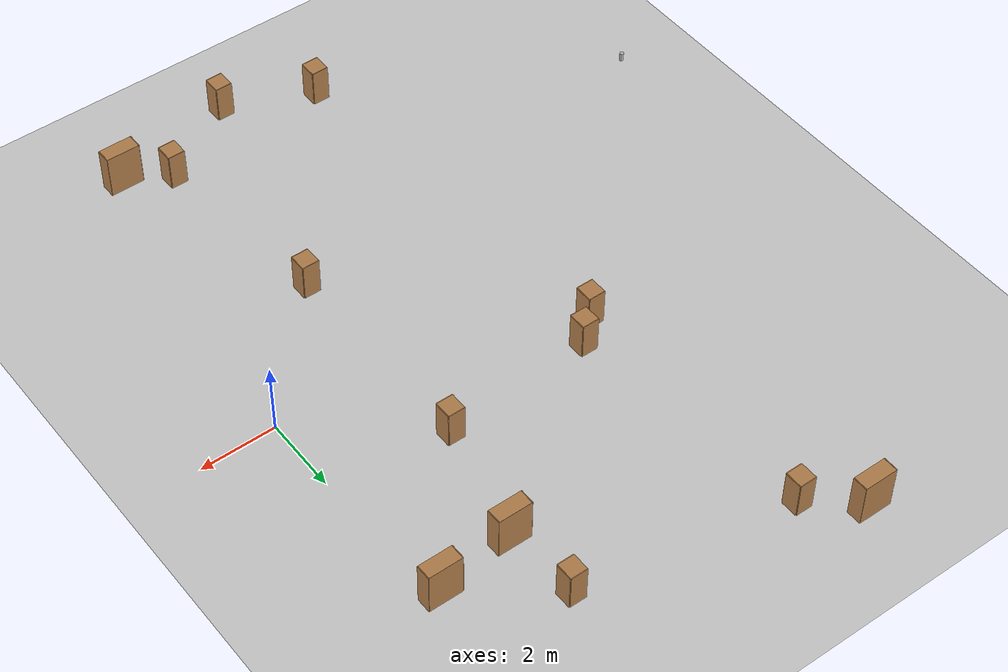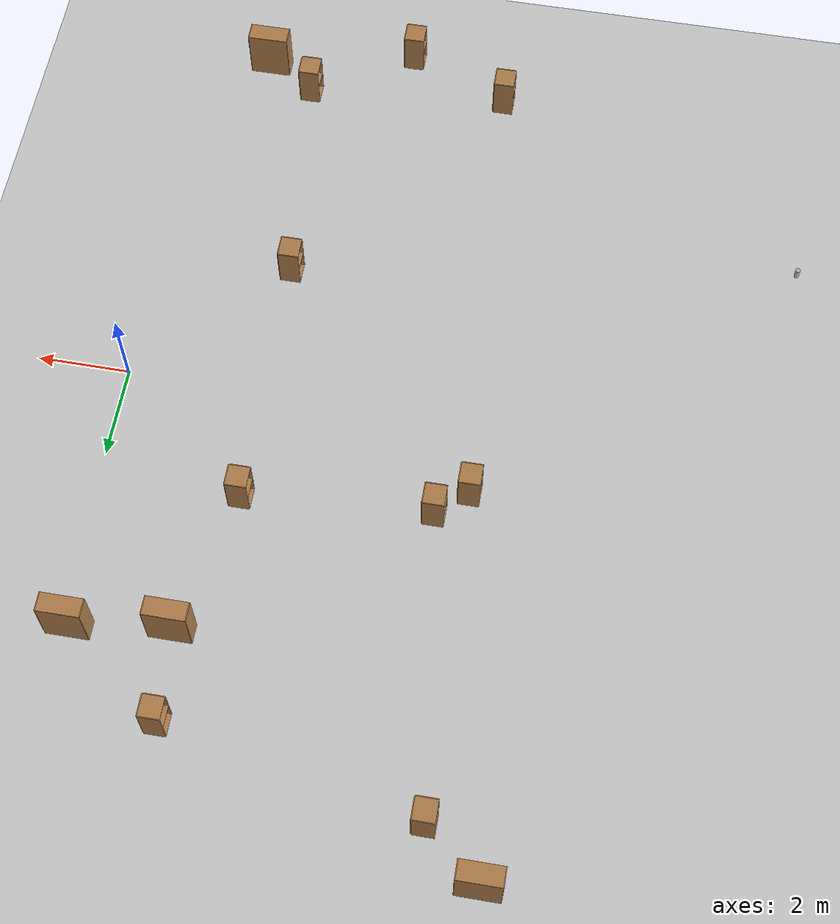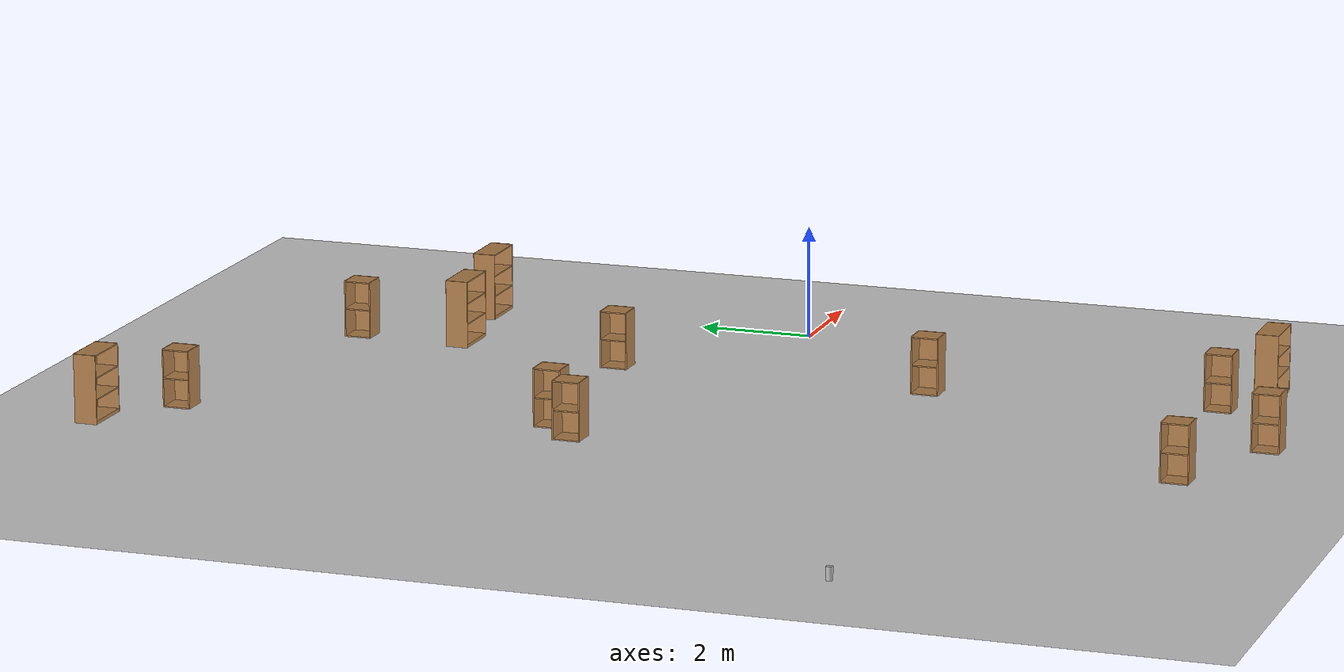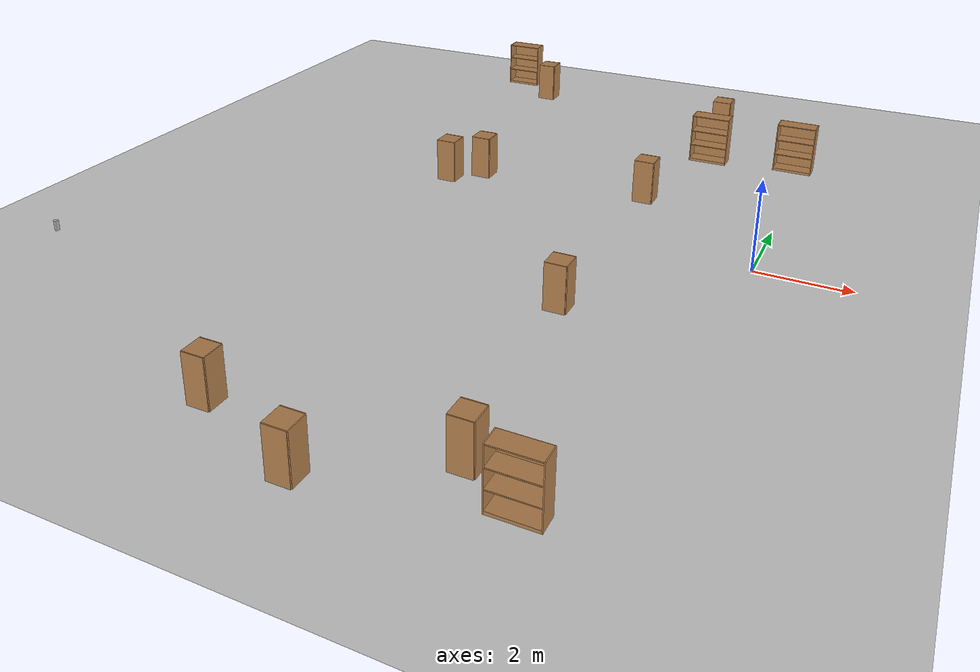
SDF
<sdf version="1.6">
 <world name="default">
  <model name="ground_plane">
   <static>1</static>
   <link name="link">
    <collision name="collision">
     <geometry><plane><normal>0 0 1</normal><size>100 100</size></plane></geometry>
     <surface><friction><ode><mu>100</mu><mu2>50</mu2></ode></friction></surface>
    </collision>
    <visual name="visual">
     <cast_shadows>0</cast_shadows>
     <geometry><plane><normal>0 0 1</normal><size>100 100</size></plane></geometry>
     <material>
      <script><uri>file://media/materials/scripts/gazebo.material</uri><name>Gazebo/Grey</name></script>
     </material>
    </visual>
   </link>
  </model>
  <model name="beer">
   <link name="link">
    <pose>0 0 0.115 0 -0 0</pose>
    <inertial>
     <mass>0.39</mass>
     <inertia><ixx>0.00058</ixx><ixy>0</ixy><ixz>0</ixz><iyy>0.00058</iyy><iyz>0</iyz><izz>0.00019</izz></inertia>
    </inertial>
    <collision name="collision">
     <geometry><cylinder><radius>0.055</radius><length>0.23</length></cylinder></geometry>
    </collision>
    <visual name="visual">
     <geometry><cylinder><radius>0.055</radius><length>0.23</length></cylinder></geometry>
     <material>
      <script>
       <uri>model://beer/materials/scripts</uri>
       <uri>model://beer/materials/textures</uri>
       <name>Beer/Diffuse</name>
      </script>
     </material>
    </visual>
   </link>
   <pose>-14.1156 -4.90296 -2e-06 1e-06 0 -4.1e-05</pose>
  </model>
  <model name="bookshelf_0">
   <static>1</static>
   <link name="link">
    <inertial><mass>1</mass></inertial>
    <collision name="back">
     <pose>0 0.005 0.6 0 -0 0</pose>
     <geometry><box><size>0.9 0.01 1.2</size></box></geometry>
    </collision>
    <visual name="visual1">
     <pose>0 0.005 0.6 0 -0 0</pose>
     <geometry><box><size>0.9 0.01 1.2</size></box></geometry>
     <material>
      <script><uri>file://media/materials/scripts/gazebo.material</uri><name>Gazebo/Wood</name></script>
     </material>
    </visual>
    <collision name="left_side">
     <pose>0.45 -0.195 0.6 0 -0 0</pose>
     <geometry><box><size>0.02 0.4 1.2</size></box></geometry>
    </collision>
    <visual name="visual2">
     <pose>0.45 -0.195 0.6 0 -0 0</pose>
     <geometry><box><size>0.02 0.4 1.2</size></box></geometry>
     <material>
      <script><uri>file://media/materials/scripts/gazebo.material</uri><name>Gazebo/Wood</name></script>
     </material>
    </visual>
    <collision name="right_side">
     <pose>-0.45 -0.195 0.6 0 -0 0</pose>
     <geometry><box><size>0.02 0.4 1.2</size></box></geometry>
    </collision>
    <visual name="visual3">
     <pose>-0.45 -0.195 0.6 0 -0 0</pose>
     <geometry><box><size>0.02 0.4 1.2</size></box></geometry>
     <material>
      <script><uri>file://media/materials/scripts/gazebo.material</uri><name>Gazebo/Wood</name></script>
     </material>
    </visual>
    <collision name="bottom">
     <pose>0 -0.195 0.03 0 -0 0</pose>
     <geometry><box><size>0.88 0.4 0.06</size></box></geometry>
    </collision>
    <visual name="visual4">
     <pose>0 -0.195 0.03 0 -0 0</pose>
     <geometry><box><size>0.88 0.4 0.06</size></box></geometry>
     <material>
      <script><uri>file://media/materials/scripts/gazebo.material</uri><name>Gazebo/Wood</name></script>
     </material>
    </visual>
    <collision name="top">
     <pose>0 -0.195 1.19 0 -0 0</pose>
     <geometry><box><size>0.88 0.4 0.02</size></box></geometry>
    </collision>
    <visual name="visual5">
     <pose>0 -0.195 1.19 0 -0 0</pose>
     <geometry><box><size>0.88 0.4 0.02</size></box></geometry>
     <material>
      <script><uri>file://media/materials/scripts/gazebo.material</uri><name>Gazebo/Wood</name></script>
     </material>
    </visual>
    <collision name="low_shelf">
     <pose>0 -0.195 0.43 0 -0 0</pose>
     <geometry><box><size>0.88 0.4 0.02</size></box></geometry>
    </collision>
    <visual name="visual6">
     <pose>0 -0.195 0.43 0 -0 0</pose>
     <geometry><box><size>0.88 0.4 0.02</size></box></geometry>
     <material>
      <script><uri>file://media/materials/scripts/gazebo.material</uri><name>Gazebo/Wood</name></script>
     </material>
    </visual>
    <collision name="high_shelf">
     <pose>0 -0.195 0.8 0 -0 0</pose>
     <geometry><box><size>0.88 0.4 0.02</size></box></geometry>
    </collision>
    <visual name="visual7">
     <pose>0 -0.195 0.8 0 -0 0</pose>
     <geometry><box><size>0.88 0.4 0.02</size></box></geometry>
     <material>
      <script><uri>file://media/materials/scripts/gazebo.material</uri><name>Gazebo/Wood</name></script>
     </material>
    </visual>
   </link>
   <pose>-0.266671 6.13176 0 0 -0 0</pose>
  </model>
  <model name="bookshelf_1">
   <static>1</static>
   <link name="link">
    <inertial><mass>1</mass></inertial>
    <collision name="back">
     <pose>0 0.005 0.6 0 -0 0</pose>
     <geometry><box><size>0.9 0.01 1.2</size></box></geometry>
    </collision>
    <visual name="visual1">
     <pose>0 0.005 0.6 0 -0 0</pose>
     <geometry><box><size>0.9 0.01 1.2</size></box></geometry>
     <material>
      <script><uri>file://media/materials/scripts/gazebo.material</uri><name>Gazebo/Wood</name></script>
     </material>
    </visual>
    <collision name="left_side">
     <pose>0.45 -0.195 0.6 0 -0 0</pose>
     <geometry><box><size>0.02 0.4 1.2</size></box></geometry>
    </collision>
    <visual name="visual2">
     <pose>0.45 -0.195 0.6 0 -0 0</pose>
     <geometry><box><size>0.02 0.4 1.2</size></box></geometry>
     <material>
      <script><uri>file://media/materials/scripts/gazebo.material</uri><name>Gazebo/Wood</name></script>
     </material>
    </visual>
    <collision name="right_side">
     <pose>-0.45 -0.195 0.6 0 -0 0</pose>
     <geometry><box><size>0.02 0.4 1.2</size></box></geometry>
    </collision>
    <visual name="visual3">
     <pose>-0.45 -0.195 0.6 0 -0 0</pose>
     <geometry><box><size>0.02 0.4 1.2</size></box></geometry>
     <material>
      <script><uri>file://media/materials/scripts/gazebo.material</uri><name>Gazebo/Wood</name></script>
     </material>
    </visual>
    <collision name="bottom">
     <pose>0 -0.195 0.03 0 -0 0</pose>
     <geometry><box><size>0.88 0.4 0.06</size></box></geometry>
    </collision>
    <visual name="visual4">
     <pose>0 -0.195 0.03 0 -0 0</pose>
     <geometry><box><size>0.88 0.4 0.06</size></box></geometry>
     <material>
      <script><uri>file://media/materials/scripts/gazebo.material</uri><name>Gazebo/Wood</name></script>
     </material>
    </visual>
    <collision name="top">
     <pose>0 -0.195 1.19 0 -0 0</pose>
     <geometry><box><size>0.88 0.4 0.02</size></box></geometry>
    </collision>
    <visual name="visual5">
     <pose>0 -0.195 1.19 0 -0 0</pose>
     <geometry><box><size>0.88 0.4 0.02</size></box></geometry>
     <material>
      <script><uri>file://media/materials/scripts/gazebo.material</uri><name>Gazebo/Wood</name></script>
     </material>
    </visual>
    <collision name="low_shelf">
     <pose>0 -0.195 0.43 0 -0 0</pose>
     <geometry><box><size>0.88 0.4 0.02</size></box></geometry>
    </collision>
    <visual name="visual6">
     <pose>0 -0.195 0.43 0 -0 0</pose>
     <geometry><box><size>0.88 0.4 0.02</size></box></geometry>
     <material>
      <script><uri>file://media/materials/scripts/gazebo.material</uri><name>Gazebo/Wood</name></script>
     </material>
    </visual>
    <collision name="high_shelf">
     <pose>0 -0.195 0.8 0 -0 0</pose>
     <geometry><box><size>0.88 0.4 0.02</size></box></geometry>
    </collision>
    <visual name="visual7">
     <pose>0 -0.195 0.8 0 -0 0</pose>
     <geometry><box><size>0.88 0.4 0.02</size></box></geometry>
     <material>
      <script><uri>file://media/materials/scripts/gazebo.material</uri><name>Gazebo/Wood</name></script>
     </material>
    </visual>
   </link>
   <pose>-2.31915 5.86151 0 0 -0 0</pose>
  </model>
  <model name="cabinet">
   <static>1</static>
   <link name="cabinet_bottom_plate">
    <inertial>
     <pose>0 0 -1 0 -0 0</pose>
     <inertia><ixx>2.05</ixx><ixy>0</ixy><ixz>0</ixz><iyy>2.05</iyy><iyz>0</iyz><izz>2.05</izz></inertia>
     <mass>25</mass>
    </inertial>
    <collision name="cabinet_bottom_plate_geom">
     <pose>0 0 0.01 0 -0 0</pose>
     <geometry><box><size>0.45 0.45 0.02</size></box></geometry>
    </collision>
    <visual name="cabinet_bottom_plate_geom_visual">
     <pose>0 0 0.01 0 -0 0</pose>
     <geometry><box><size>0.45 0.45 0.02</size></box></geometry>
     <material>
      <script><uri>file://media/materials/scripts/gazebo.material</uri><name>Gazebo/Wood</name></script>
     </material>
    </visual>
    <collision name="cabinet_bottom_plate_geom_cabinet_back_plate">
     <pose>0.235 0 0.51 0 -0 0</pose>
     <geometry><box><size>0.02 0.45 1.02</size></box></geometry>
    </collision>
    <visual name="cabinet_bottom_plate_geom_cabinet_back_plate_visual">
     <pose>0.235 0 0.51 0 -0 0</pose>
     <geometry><box><size>0.02 0.45 1.02</size></box></geometry>
     <material>
      <script><uri>file://media/materials/scripts/gazebo.material</uri><name>Gazebo/Wood</name></script>
     </material>
    </visual>
    <collision name="cabinet_bottom_plate_geom_cabinet_left_plate">
     <pose>0 0.235 0.51 0 -0 0</pose>
     <geometry><box><size>0.45 0.02 1.02</size></box></geometry>
    </collision>
    <visual name="cabinet_bottom_plate_geom_cabinet_left_plate_visual">
     <pose>0 0.235 0.51 0 -0 0</pose>
     <geometry><box><size>0.45 0.02 1.02</size></box></geometry>
     <material>
      <script><uri>file://media/materials/scripts/gazebo.material</uri><name>Gazebo/Wood</name></script>
     </material>
    </visual>
    <collision name="cabinet_bottom_plate_geom_cabinet_middle_plate">
     <pose>0 0 0.51 0 -0 0</pose>
     <geometry><box><size>0.45 0.45 0.02</size></box></geometry>
    </collision>
    <visual name="cabinet_bottom_plate_geom_cabinet_middle_plate_visual">
     <pose>0 0 0.51 0 -0 0</pose>
     <geometry><box><size>0.45 0.45 0.02</size></box></geometry>
     <material>
      <script><uri>file://media/materials/scripts/gazebo.material</uri><name>Gazebo/Wood</name></script>
     </material>
    </visual>
    <collision name="cabinet_bottom_plate_geom_cabinet_right_plate">
     <pose>0 -0.235 0.51 0 -0 0</pose>
     <geometry><box><size>0.45 0.02 1.02</size></box></geometry>
    </collision>
    <visual name="cabinet_bottom_plate_geom_cabinet_right_plate_visual">
     <pose>0 -0.235 0.51 0 -0 0</pose>
     <geometry><box><size>0.45 0.02 1.02</size></box></geometry>
     <material>
      <script><uri>file://media/materials/scripts/gazebo.material</uri><name>Gazebo/Wood</name></script>
     </material>
    </visual>
    <collision name="cabinet_bottom_plate_geom_cabinet_top_plate">
     <pose>0 0 1.01 0 -0 0</pose>
     <geometry><box><size>0.45 0.45 0.02</size></box></geometry>
    </collision>
    <visual name="cabinet_bottom_plate_geom_cabinet_top_plate_visual">
     <pose>0 0 1.01 0 -0 0</pose>
     <geometry><box><size>0.45 0.45 0.02</size></box></geometry>
     <material>
      <script><uri>file://media/materials/scripts/gazebo.material</uri><name>Gazebo/Wood</name></script>
     </material>
    </visual>
   </link>
   <pose>-2.98762 -3.11503 0 0 -0 0</pose>
  </model>
  <model name="cabinet_1">
   <static>1</static>
   <link name="cabinet_bottom_plate">
    <inertial>
     <pose>0 0 -1 0 -0 0</pose>
     <inertia><ixx>2.05</ixx><ixy>0</ixy><ixz>0</ixz><iyy>2.05</iyy><iyz>0</iyz><izz>2.05</izz></inertia>
     <mass>25</mass>
    </inertial>
    <collision name="cabinet_bottom_plate_geom">
     <pose>0 0 0.01 0 -0 0</pose>
     <geometry><box><size>0.45 0.45 0.02</size></box></geometry>
    </collision>
    <visual name="cabinet_bottom_plate_geom_visual">
     <pose>0 0 0.01 0 -0 0</pose>
     <geometry><box><size>0.45 0.45 0.02</size></box></geometry>
     <material>
      <script><uri>file://media/materials/scripts/gazebo.material</uri><name>Gazebo/Wood</name></script>
     </material>
    </visual>
    <collision name="cabinet_bottom_plate_geom_cabinet_back_plate">
     <pose>0.235 0 0.51 0 -0 0</pose>
     <geometry><box><size>0.02 0.45 1.02</size></box></geometry>
    </collision>
    <visual name="cabinet_bottom_plate_geom_cabinet_back_plate_visual">
     <pose>0.235 0 0.51 0 -0 0</pose>
     <geometry><box><size>0.02 0.45 1.02</size></box></geometry>
     <material>
      <script><uri>file://media/materials/scripts/gazebo.material</uri><name>Gazebo/Wood</name></script>
     </material>
    </visual>
    <collision name="cabinet_bottom_plate_geom_cabinet_left_plate">
     <pose>0 0.235 0.51 0 -0 0</pose>
     <geometry><box><size>0.45 0.02 1.02</size></box></geometry>
    </collision>
    <visual name="cabinet_bottom_plate_geom_cabinet_left_plate_visual">
     <pose>0 0.235 0.51 0 -0 0</pose>
     <geometry><box><size>0.45 0.02 1.02</size></box></geometry>
     <material>
      <script><uri>file://media/materials/scripts/gazebo.material</uri><name>Gazebo/Wood</name></script>
     </material>
    </visual>
    <collision name="cabinet_bottom_plate_geom_cabinet_middle_plate">
     <pose>0 0 0.51 0 -0 0</pose>
     <geometry><box><size>0.45 0.45 0.02</size></box></geometry>
    </collision>
    <visual name="cabinet_bottom_plate_geom_cabinet_middle_plate_visual">
     <pose>0 0 0.51 0 -0 0</pose>
     <geometry><box><size>0.45 0.45 0.02</size></box></geometry>
     <material>
      <script><uri>file://media/materials/scripts/gazebo.material</uri><name>Gazebo/Wood</name></script>
     </material>
    </visual>
    <collision name="cabinet_bottom_plate_geom_cabinet_right_plate">
     <pose>0 -0.235 0.51 0 -0 0</pose>
     <geometry><box><size>0.45 0.02 1.02</size></box></geometry>
    </collision>
    <visual name="cabinet_bottom_plate_geom_cabinet_right_plate_visual">
     <pose>0 -0.235 0.51 0 -0 0</pose>
     <geometry><box><size>0.45 0.02 1.02</size></box></geometry>
     <material>
      <script><uri>file://media/materials/scripts/gazebo.material</uri><name>Gazebo/Wood</name></script>
     </material>
    </visual>
    <collision name="cabinet_bottom_plate_geom_cabinet_top_plate">
     <pose>0 0 1.01 0 -0 0</pose>
     <geometry><box><size>0.45 0.45 0.02</size></box></geometry>
    </collision>
    <visual name="cabinet_bottom_plate_geom_cabinet_top_plate_visual">
     <pose>0 0 1.01 0 -0 0</pose>
     <geometry><box><size>0.45 0.45 0.02</size></box></geometry>
     <material>
      <script><uri>file://media/materials/scripts/gazebo.material</uri><name>Gazebo/Wood</name></script>
     </material>
    </visual>
   </link>
   <pose>-3.05665 2.53564 0 0 -0 0</pose>
  </model>
  <model name="cabinet_2">
   <static>1</static>
   <link name="cabinet_bottom_plate">
    <inertial>
     <pose>0 0 -1 0 -0 0</pose>
     <inertia><ixx>2.05</ixx><ixy>0</ixy><ixz>0</ixz><iyy>2.05</iyy><iyz>0</iyz><izz>2.05</izz></inertia>
     <mass>25</mass>
    </inertial>
    <collision name="cabinet_bottom_plate_geom">
     <pose>0 0 0.01 0 -0 0</pose>
     <geometry><box><size>0.45 0.45 0.02</size></box></geometry>
    </collision>
    <visual name="cabinet_bottom_plate_geom_visual">
     <pose>0 0 0.01 0 -0 0</pose>
     <geometry><box><size>0.45 0.45 0.02</size></box></geometry>
     <material>
      <script><uri>file://media/materials/scripts/gazebo.material</uri><name>Gazebo/Wood</name></script>
     </material>
    </visual>
    <collision name="cabinet_bottom_plate_geom_cabinet_back_plate">
     <pose>0.235 0 0.51 0 -0 0</pose>
     <geometry><box><size>0.02 0.45 1.02</size></box></geometry>
    </collision>
    <visual name="cabinet_bottom_plate_geom_cabinet_back_plate_visual">
     <pose>0.235 0 0.51 0 -0 0</pose>
     <geometry><box><size>0.02 0.45 1.02</size></box></geometry>
     <material>
      <script><uri>file://media/materials/scripts/gazebo.material</uri><name>Gazebo/Wood</name></script>
     </material>
    </visual>
    <collision name="cabinet_bottom_plate_geom_cabinet_left_plate">
     <pose>0 0.235 0.51 0 -0 0</pose>
     <geometry><box><size>0.45 0.02 1.02</size></box></geometry>
    </collision>
    <visual name="cabinet_bottom_plate_geom_cabinet_left_plate_visual">
     <pose>0 0.235 0.51 0 -0 0</pose>
     <geometry><box><size>0.45 0.02 1.02</size></box></geometry>
     <material>
      <script><uri>file://media/materials/scripts/gazebo.material</uri><name>Gazebo/Wood</name></script>
     </material>
    </visual>
    <collision name="cabinet_bottom_plate_geom_cabinet_middle_plate">
     <pose>0 0 0.51 0 -0 0</pose>
     <geometry><box><size>0.45 0.45 0.02</size></box></geometry>
    </collision>
    <visual name="cabinet_bottom_plate_geom_cabinet_middle_plate_visual">
     <pose>0 0 0.51 0 -0 0</pose>
     <geometry><box><size>0.45 0.45 0.02</size></box></geometry>
     <material>
      <script><uri>file://media/materials/scripts/gazebo.material</uri><name>Gazebo/Wood</name></script>
     </material>
    </visual>
    <collision name="cabinet_bottom_plate_geom_cabinet_right_plate">
     <pose>0 -0.235 0.51 0 -0 0</pose>
     <geometry><box><size>0.45 0.02 1.02</size></box></geometry>
    </collision>
    <visual name="cabinet_bottom_plate_geom_cabinet_right_plate_visual">
     <pose>0 -0.235 0.51 0 -0 0</pose>
     <geometry><box><size>0.45 0.02 1.02</size></box></geometry>
     <material>
      <script><uri>file://media/materials/scripts/gazebo.material</uri><name>Gazebo/Wood</name></script>
     </material>
    </visual>
    <collision name="cabinet_bottom_plate_geom_cabinet_top_plate">
     <pose>0 0 1.01 0 -0 0</pose>
     <geometry><box><size>0.45 0.45 0.02</size></box></geometry>
    </collision>
    <visual name="cabinet_bottom_plate_geom_cabinet_top_plate_visual">
     <pose>0 0 1.01 0 -0 0</pose>
     <geometry><box><size>0.45 0.45 0.02</size></box></geometry>
     <material>
      <script><uri>file://media/materials/scripts/gazebo.material</uri><name>Gazebo/Wood</name></script>
     </material>
    </visual>
   </link>
   <pose>-2.43764 -8.14945 0 0 -0 0</pose>
  </model>
  <model name="cabinet_3">
   <static>1</static>
   <link name="cabinet_bottom_plate">
    <inertial>
     <pose>0 0 -1 0 -0 0</pose>
     <inertia><ixx>2.05</ixx><ixy>0</ixy><ixz>0</ixz><iyy>2.05</iyy><iyz>0</iyz><izz>2.05</izz></inertia>
     <mass>25</mass>
    </inertial>
    <collision name="cabinet_bottom_plate_geom">
     <pose>0 0 0.01 0 -0 0</pose>
     <geometry><box><size>0.45 0.45 0.02</size></box></geometry>
    </collision>
    <visual name="cabinet_bottom_plate_geom_visual">
     <pose>0 0 0.01 0 -0 0</pose>
     <geometry><box><size>0.45 0.45 0.02</size></box></geometry>
     <material>
      <script><uri>file://media/materials/scripts/gazebo.material</uri><name>Gazebo/Wood</name></script>
     </material>
    </visual>
    <collision name="cabinet_bottom_plate_geom_cabinet_back_plate">
     <pose>0.235 0 0.51 0 -0 0</pose>
     <geometry><box><size>0.02 0.45 1.02</size></box></geometry>
    </collision>
    <visual name="cabinet_bottom_plate_geom_cabinet_back_plate_visual">
     <pose>0.235 0 0.51 0 -0 0</pose>
     <geometry><box><size>0.02 0.45 1.02</size></box></geometry>
     <material>
      <script><uri>file://media/materials/scripts/gazebo.material</uri><name>Gazebo/Wood</name></script>
     </material>
    </visual>
    <collision name="cabinet_bottom_plate_geom_cabinet_left_plate">
     <pose>0 0.235 0.51 0 -0 0</pose>
     <geometry><box><size>0.45 0.02 1.02</size></box></geometry>
    </collision>
    <visual name="cabinet_bottom_plate_geom_cabinet_left_plate_visual">
     <pose>0 0.235 0.51 0 -0 0</pose>
     <geometry><box><size>0.45 0.02 1.02</size></box></geometry>
     <material>
      <script><uri>file://media/materials/scripts/gazebo.material</uri><name>Gazebo/Wood</name></script>
     </material>
    </visual>
    <collision name="cabinet_bottom_plate_geom_cabinet_middle_plate">
     <pose>0 0 0.51 0 -0 0</pose>
     <geometry><box><size>0.45 0.45 0.02</size></box></geometry>
    </collision>
    <visual name="cabinet_bottom_plate_geom_cabinet_middle_plate_visual">
     <pose>0 0 0.51 0 -0 0</pose>
     <geometry><box><size>0.45 0.45 0.02</size></box></geometry>
     <material>
      <script><uri>file://media/materials/scripts/gazebo.material</uri><name>Gazebo/Wood</name></script>
     </material>
    </visual>
    <collision name="cabinet_bottom_plate_geom_cabinet_right_plate">
     <pose>0 -0.235 0.51 0 -0 0</pose>
     <geometry><box><size>0.45 0.02 1.02</size></box></geometry>
    </collision>
    <visual name="cabinet_bottom_plate_geom_cabinet_right_plate_visual">
     <pose>0 -0.235 0.51 0 -0 0</pose>
     <geometry><box><size>0.45 0.02 1.02</size></box></geometry>
     <material>
      <script><uri>file://media/materials/scripts/gazebo.material</uri><name>Gazebo/Wood</name></script>
     </material>
    </visual>
    <collision name="cabinet_bottom_plate_geom_cabinet_top_plate">
     <pose>0 0 1.01 0 -0 0</pose>
     <geometry><box><size>0.45 0.45 0.02</size></box></geometry>
    </collision>
    <visual name="cabinet_bottom_plate_geom_cabinet_top_plate_visual">
     <pose>0 0 1.01 0 -0 0</pose>
     <geometry><box><size>0.45 0.45 0.02</size></box></geometry>
     <material>
      <script><uri>file://media/materials/scripts/gazebo.material</uri><name>Gazebo/Wood</name></script>
     </material>
    </visual>
   </link>
   <pose>-6.97302 -8.55234 0 0 -0 0</pose>
  </model>
  <model name="cabinet_4">
   <static>1</static>
   <link name="cabinet_bottom_plate">
    <inertial>
     <pose>0 0 -1 0 -0 0</pose>
     <inertia><ixx>2.05</ixx><ixy>0</ixy><ixz>0</ixz><iyy>2.05</iyy><iyz>0</iyz><izz>2.05</izz></inertia>
     <mass>25</mass>
    </inertial>
    <collision name="cabinet_bottom_plate_geom">
     <pose>0 0 0.01 0 -0 0</pose>
     <geometry><box><size>0.45 0.45 0.02</size></box></geometry>
    </collision>
    <visual name="cabinet_bottom_plate_geom_visual">
     <pose>0 0 0.01 0 -0 0</pose>
     <geometry><box><size>0.45 0.45 0.02</size></box></geometry>
     <material>
      <script><uri>file://media/materials/scripts/gazebo.material</uri><name>Gazebo/Wood</name></script>
     </material>
    </visual>
    <collision name="cabinet_bottom_plate_geom_cabinet_back_plate">
     <pose>0.235 0 0.51 0 -0 0</pose>
     <geometry><box><size>0.02 0.45 1.02</size></box></geometry>
    </collision>
    <visual name="cabinet_bottom_plate_geom_cabinet_back_plate_visual">
     <pose>0.235 0 0.51 0 -0 0</pose>
     <geometry><box><size>0.02 0.45 1.02</size></box></geometry>
     <material>
      <script><uri>file://media/materials/scripts/gazebo.material</uri><name>Gazebo/Wood</name></script>
     </material>
    </visual>
    <collision name="cabinet_bottom_plate_geom_cabinet_left_plate">
     <pose>0 0.235 0.51 0 -0 0</pose>
     <geometry><box><size>0.45 0.02 1.02</size></box></geometry>
    </collision>
    <visual name="cabinet_bottom_plate_geom_cabinet_left_plate_visual">
     <pose>0 0.235 0.51 0 -0 0</pose>
     <geometry><box><size>0.45 0.02 1.02</size></box></geometry>
     <material>
      <script><uri>file://media/materials/scripts/gazebo.material</uri><name>Gazebo/Wood</name></script>
     </material>
    </visual>
    <collision name="cabinet_bottom_plate_geom_cabinet_middle_plate">
     <pose>0 0 0.51 0 -0 0</pose>
     <geometry><box><size>0.45 0.45 0.02</size></box></geometry>
    </collision>
    <visual name="cabinet_bottom_plate_geom_cabinet_middle_plate_visual">
     <pose>0 0 0.51 0 -0 0</pose>
     <geometry><box><size>0.45 0.45 0.02</size></box></geometry>
     <material>
      <script><uri>file://media/materials/scripts/gazebo.material</uri><name>Gazebo/Wood</name></script>
     </material>
    </visual>
    <collision name="cabinet_bottom_plate_geom_cabinet_right_plate">
     <pose>0 -0.235 0.51 0 -0 0</pose>
     <geometry><box><size>0.45 0.02 1.02</size></box></geometry>
    </collision>
    <visual name="cabinet_bottom_plate_geom_cabinet_right_plate_visual">
     <pose>0 -0.235 0.51 0 -0 0</pose>
     <geometry><box><size>0.45 0.02 1.02</size></box></geometry>
     <material>
      <script><uri>file://media/materials/scripts/gazebo.material</uri><name>Gazebo/Wood</name></script>
     </material>
    </visual>
    <collision name="cabinet_bottom_plate_geom_cabinet_top_plate">
     <pose>0 0 1.01 0 -0 0</pose>
     <geometry><box><size>0.45 0.45 0.02</size></box></geometry>
    </collision>
    <visual name="cabinet_bottom_plate_geom_cabinet_top_plate_visual">
     <pose>0 0 1.01 0 -0 0</pose>
     <geometry><box><size>0.45 0.45 0.02</size></box></geometry>
     <material>
      <script><uri>file://media/materials/scripts/gazebo.material</uri><name>Gazebo/Wood</name></script>
     </material>
    </visual>
   </link>
   <pose>-7.74622 1.68507 0 0 -0 0</pose>
  </model>
  <model name="cabinet_5">
   <static>1</static>
   <link name="cabinet_bottom_plate">
    <inertial>
     <pose>0 0 -1 0 -0 0</pose>
     <inertia><ixx>2.05</ixx><ixy>0</ixy><ixz>0</ixz><iyy>2.05</iyy><iyz>0</iyz><izz>2.05</izz></inertia>
     <mass>25</mass>
    </inertial>
    <collision name="cabinet_bottom_plate_geom">
     <pose>0 0 0.01 0 -0 0</pose>
     <geometry><box><size>0.45 0.45 0.02</size></box></geometry>
    </collision>
    <visual name="cabinet_bottom_plate_geom_visual">
     <pose>0 0 0.01 0 -0 0</pose>
     <geometry><box><size>0.45 0.45 0.02</size></box></geometry>
     <material>
      <script><uri>file://media/materials/scripts/gazebo.material</uri><name>Gazebo/Wood</name></script>
     </material>
    </visual>
    <collision name="cabinet_bottom_plate_geom_cabinet_back_plate">
     <pose>0.235 0 0.51 0 -0 0</pose>
     <geometry><box><size>0.02 0.45 1.02</size></box></geometry>
    </collision>
    <visual name="cabinet_bottom_plate_geom_cabinet_back_plate_visual">
     <pose>0.235 0 0.51 0 -0 0</pose>
     <geometry><box><size>0.02 0.45 1.02</size></box></geometry>
     <material>
      <script><uri>file://media/materials/scripts/gazebo.material</uri><name>Gazebo/Wood</name></script>
     </material>
    </visual>
    <collision name="cabinet_bottom_plate_geom_cabinet_left_plate">
     <pose>0 0.235 0.51 0 -0 0</pose>
     <geometry><box><size>0.45 0.02 1.02</size></box></geometry>
    </collision>
    <visual name="cabinet_bottom_plate_geom_cabinet_left_plate_visual">
     <pose>0 0.235 0.51 0 -0 0</pose>
     <geometry><box><size>0.45 0.02 1.02</size></box></geometry>
     <material>
      <script><uri>file://media/materials/scripts/gazebo.material</uri><name>Gazebo/Wood</name></script>
     </material>
    </visual>
    <collision name="cabinet_bottom_plate_geom_cabinet_middle_plate">
     <pose>0 0 0.51 0 -0 0</pose>
     <geometry><box><size>0.45 0.45 0.02</size></box></geometry>
    </collision>
    <visual name="cabinet_bottom_plate_geom_cabinet_middle_plate_visual">
     <pose>0 0 0.51 0 -0 0</pose>
     <geometry><box><size>0.45 0.45 0.02</size></box></geometry>
     <material>
      <script><uri>file://media/materials/scripts/gazebo.material</uri><name>Gazebo/Wood</name></script>
     </material>
    </visual>
    <collision name="cabinet_bottom_plate_geom_cabinet_right_plate">
     <pose>0 -0.235 0.51 0 -0 0</pose>
     <geometry><box><size>0.45 0.02 1.02</size></box></geometry>
    </collision>
    <visual name="cabinet_bottom_plate_geom_cabinet_right_plate_visual">
     <pose>0 -0.235 0.51 0 -0 0</pose>
     <geometry><box><size>0.45 0.02 1.02</size></box></geometry>
     <material>
      <script><uri>file://media/materials/scripts/gazebo.material</uri><name>Gazebo/Wood</name></script>
     </material>
    </visual>
    <collision name="cabinet_bottom_plate_geom_cabinet_top_plate">
     <pose>0 0 1.01 0 -0 0</pose>
     <geometry><box><size>0.45 0.45 0.02</size></box></geometry>
    </collision>
    <visual name="cabinet_bottom_plate_geom_cabinet_top_plate_visual">
     <pose>0 0 1.01 0 -0 0</pose>
     <geometry><box><size>0.45 0.45 0.02</size></box></geometry>
     <material>
      <script><uri>file://media/materials/scripts/gazebo.material</uri><name>Gazebo/Wood</name></script>
     </material>
    </visual>
   </link>
   <pose>-7.09283 2.26656 0 0 -0 0</pose>
  </model>
  <model name="cabinet_6">
   <static>1</static>
   <link name="cabinet_bottom_plate">
    <inertial>
     <pose>0 0 -1 0 -0 0</pose>
     <inertia><ixx>2.05</ixx><ixy>0</ixy><ixz>0</ixz><iyy>2.05</iyy><iyz>0</iyz><izz>2.05</izz></inertia>
     <mass>25</mass>
    </inertial>
    <collision name="cabinet_bottom_plate_geom">
     <pose>0 0 0.01 0 -0 0</pose>
     <geometry><box><size>0.45 0.45 0.02</size></box></geometry>
    </collision>
    <visual name="cabinet_bottom_plate_geom_visual">
     <pose>0 0 0.01 0 -0 0</pose>
     <geometry><box><size>0.45 0.45 0.02</size></box></geometry>
     <material>
      <script><uri>file://media/materials/scripts/gazebo.material</uri><name>Gazebo/Wood</name></script>
     </material>
    </visual>
    <collision name="cabinet_bottom_plate_geom_cabinet_back_plate">
     <pose>0.235 0 0.51 0 -0 0</pose>
     <geometry><box><size>0.02 0.45 1.02</size></box></geometry>
    </collision>
    <visual name="cabinet_bottom_plate_geom_cabinet_back_plate_visual">
     <pose>0.235 0 0.51 0 -0 0</pose>
     <geometry><box><size>0.02 0.45 1.02</size></box></geometry>
     <material>
      <script><uri>file://media/materials/scripts/gazebo.material</uri><name>Gazebo/Wood</name></script>
     </material>
    </visual>
    <collision name="cabinet_bottom_plate_geom_cabinet_left_plate">
     <pose>0 0.235 0.51 0 -0 0</pose>
     <geometry><box><size>0.45 0.02 1.02</size></box></geometry>
    </collision>
    <visual name="cabinet_bottom_plate_geom_cabinet_left_plate_visual">
     <pose>0 0.235 0.51 0 -0 0</pose>
     <geometry><box><size>0.45 0.02 1.02</size></box></geometry>
     <material>
      <script><uri>file://media/materials/scripts/gazebo.material</uri><name>Gazebo/Wood</name></script>
     </material>
    </visual>
    <collision name="cabinet_bottom_plate_geom_cabinet_middle_plate">
     <pose>0 0 0.51 0 -0 0</pose>
     <geometry><box><size>0.45 0.45 0.02</size></box></geometry>
    </collision>
    <visual name="cabinet_bottom_plate_geom_cabinet_middle_plate_visual">
     <pose>0 0 0.51 0 -0 0</pose>
     <geometry><box><size>0.45 0.45 0.02</size></box></geometry>
     <material>
      <script><uri>file://media/materials/scripts/gazebo.material</uri><name>Gazebo/Wood</name></script>
     </material>
    </visual>
    <collision name="cabinet_bottom_plate_geom_cabinet_right_plate">
     <pose>0 -0.235 0.51 0 -0 0</pose>
     <geometry><box><size>0.45 0.02 1.02</size></box></geometry>
    </collision>
    <visual name="cabinet_bottom_plate_geom_cabinet_right_plate_visual">
     <pose>0 -0.235 0.51 0 -0 0</pose>
     <geometry><box><size>0.45 0.02 1.02</size></box></geometry>
     <material>
      <script><uri>file://media/materials/scripts/gazebo.material</uri><name>Gazebo/Wood</name></script>
     </material>
    </visual>
    <collision name="cabinet_bottom_plate_geom_cabinet_top_plate">
     <pose>0 0 1.01 0 -0 0</pose>
     <geometry><box><size>0.45 0.45 0.02</size></box></geometry>
    </collision>
    <visual name="cabinet_bottom_plate_geom_cabinet_top_plate_visual">
     <pose>0 0 1.01 0 -0 0</pose>
     <geometry><box><size>0.45 0.45 0.02</size></box></geometry>
     <material>
      <script><uri>file://media/materials/scripts/gazebo.material</uri><name>Gazebo/Wood</name></script>
     </material>
    </visual>
   </link>
   <pose>-7.96478 8.67449 0 0 -0 0</pose>
  </model>
  <model name="cabinet_8">
   <static>1</static>
   <link name="cabinet_bottom_plate">
    <inertial>
     <pose>0 0 -1 0 -0 0</pose>
     <inertia><ixx>2.05</ixx><ixy>0</ixy><ixz>0</ixz><iyy>2.05</iyy><iyz>0</iyz><izz>2.05</izz></inertia>
     <mass>25</mass>
    </inertial>
    <collision name="cabinet_bottom_plate_geom">
     <pose>0 0 0.01 0 -0 0</pose>
     <geometry><box><size>0.45 0.45 0.02</size></box></geometry>
    </collision>
    <visual name="cabinet_bottom_plate_geom_visual">
     <pose>0 0 0.01 0 -0 0</pose>
     <geometry><box><size>0.45 0.45 0.02</size></box></geometry>
     <material>
      <script><uri>file://media/materials/scripts/gazebo.material</uri><name>Gazebo/Wood</name></script>
     </material>
    </visual>
    <collision name="cabinet_bottom_plate_geom_cabinet_back_plate">
     <pose>0.235 0 0.51 0 -0 0</pose>
     <geometry><box><size>0.02 0.45 1.02</size></box></geometry>
    </collision>
    <visual name="cabinet_bottom_plate_geom_cabinet_back_plate_visual">
     <pose>0.235 0 0.51 0 -0 0</pose>
     <geometry><box><size>0.02 0.45 1.02</size></box></geometry>
     <material>
      <script><uri>file://media/materials/scripts/gazebo.material</uri><name>Gazebo/Wood</name></script>
     </material>
    </visual>
    <collision name="cabinet_bottom_plate_geom_cabinet_left_plate">
     <pose>0 0.235 0.51 0 -0 0</pose>
     <geometry><box><size>0.45 0.02 1.02</size></box></geometry>
    </collision>
    <visual name="cabinet_bottom_plate_geom_cabinet_left_plate_visual">
     <pose>0 0.235 0.51 0 -0 0</pose>
     <geometry><box><size>0.45 0.02 1.02</size></box></geometry>
     <material>
      <script><uri>file://media/materials/scripts/gazebo.material</uri><name>Gazebo/Wood</name></script>
     </material>
    </visual>
    <collision name="cabinet_bottom_plate_geom_cabinet_middle_plate">
     <pose>0 0 0.51 0 -0 0</pose>
     <geometry><box><size>0.45 0.45 0.02</size></box></geometry>
    </collision>
    <visual name="cabinet_bottom_plate_geom_cabinet_middle_plate_visual">
     <pose>0 0 0.51 0 -0 0</pose>
     <geometry><box><size>0.45 0.45 0.02</size></box></geometry>
     <material>
      <script><uri>file://media/materials/scripts/gazebo.material</uri><name>Gazebo/Wood</name></script>
     </material>
    </visual>
    <collision name="cabinet_bottom_plate_geom_cabinet_right_plate">
     <pose>0 -0.235 0.51 0 -0 0</pose>
     <geometry><box><size>0.45 0.02 1.02</size></box></geometry>
    </collision>
    <visual name="cabinet_bottom_plate_geom_cabinet_right_plate_visual">
     <pose>0 -0.235 0.51 0 -0 0</pose>
     <geometry><box><size>0.45 0.02 1.02</size></box></geometry>
     <material>
      <script><uri>file://media/materials/scripts/gazebo.material</uri><name>Gazebo/Wood</name></script>
     </material>
    </visual>
    <collision name="cabinet_bottom_plate_geom_cabinet_top_plate">
     <pose>0 0 1.01 0 -0 0</pose>
     <geometry><box><size>0.45 0.45 0.02</size></box></geometry>
    </collision>
    <visual name="cabinet_bottom_plate_geom_cabinet_top_plate_visual">
     <pose>0 0 1.01 0 -0 0</pose>
     <geometry><box><size>0.45 0.45 0.02</size></box></geometry>
     <material>
      <script><uri>file://media/materials/scripts/gazebo.material</uri><name>Gazebo/Wood</name></script>
     </material>
    </visual>
   </link>
   <pose>-4.69799 -9.5181 0 0 -0 0</pose>
  </model>
  <model name="bookshelf_2">
   <static>1</static>
   <link name="link">
    <inertial><mass>1</mass></inertial>
    <collision name="back">
     <pose>0 0.005 0.6 0 -0 0</pose>
     <geometry><box><size>0.9 0.01 1.2</size></box></geometry>
    </collision>
    <visual name="visual1">
     <pose>0 0.005 0.6 0 -0 0</pose>
     <geometry><box><size>0.9 0.01 1.2</size></box></geometry>
     <material>
      <script><uri>file://media/materials/scripts/gazebo.material</uri><name>Gazebo/Wood</name></script>
     </material>
    </visual>
    <collision name="left_side">
     <pose>0.45 -0.195 0.6 0 -0 0</pose>
     <geometry><box><size>0.02 0.4 1.2</size></box></geometry>
    </collision>
    <visual name="visual2">
     <pose>0.45 -0.195 0.6 0 -0 0</pose>
     <geometry><box><size>0.02 0.4 1.2</size></box></geometry>
     <material>
      <script><uri>file://media/materials/scripts/gazebo.material</uri><name>Gazebo/Wood</name></script>
     </material>
    </visual>
    <collision name="right_side">
     <pose>-0.45 -0.195 0.6 0 -0 0</pose>
     <geometry><box><size>0.02 0.4 1.2</size></box></geometry>
    </collision>
    <visual name="visual3">
     <pose>-0.45 -0.195 0.6 0 -0 0</pose>
     <geometry><box><size>0.02 0.4 1.2</size></box></geometry>
     <material>
      <script><uri>file://media/materials/scripts/gazebo.material</uri><name>Gazebo/Wood</name></script>
     </material>
    </visual>
    <collision name="bottom">
     <pose>0 -0.195 0.03 0 -0 0</pose>
     <geometry><box><size>0.88 0.4 0.06</size></box></geometry>
    </collision>
    <visual name="visual4">
     <pose>0 -0.195 0.03 0 -0 0</pose>
     <geometry><box><size>0.88 0.4 0.06</size></box></geometry>
     <material>
      <script><uri>file://media/materials/scripts/gazebo.material</uri><name>Gazebo/Wood</name></script>
     </material>
    </visual>
    <collision name="top">
     <pose>0 -0.195 1.19 0 -0 0</pose>
     <geometry><box><size>0.88 0.4 0.02</size></box></geometry>
    </collision>
    <visual name="visual5">
     <pose>0 -0.195 1.19 0 -0 0</pose>
     <geometry><box><size>0.88 0.4 0.02</size></box></geometry>
     <material>
      <script><uri>file://media/materials/scripts/gazebo.material</uri><name>Gazebo/Wood</name></script>
     </material>
    </visual>
    <collision name="low_shelf">
     <pose>0 -0.195 0.43 0 -0 0</pose>
     <geometry><box><size>0.88 0.4 0.02</size></box></geometry>
    </collision>
    <visual name="visual6">
     <pose>0 -0.195 0.43 0 -0 0</pose>
     <geometry><box><size>0.88 0.4 0.02</size></box></geometry>
     <material>
      <script><uri>file://media/materials/scripts/gazebo.material</uri><name>Gazebo/Wood</name></script>
     </material>
    </visual>
    <collision name="high_shelf">
     <pose>0 -0.195 0.8 0 -0 0</pose>
     <geometry><box><size>0.88 0.4 0.02</size></box></geometry>
    </collision>
    <visual name="visual7">
     <pose>0 -0.195 0.8 0 -0 0</pose>
     <geometry><box><size>0.88 0.4 0.02</size></box></geometry>
     <material>
      <script><uri>file://media/materials/scripts/gazebo.material</uri><name>Gazebo/Wood</name></script>
     </material>
    </visual>
   </link>
   <pose>-9.15403 9.8968 0 0 -0 0</pose>
  </model>
  <model name="bookshelf_3">
   <static>1</static>
   <link name="link">
    <inertial><mass>1</mass></inertial>
    <collision name="back">
     <pose>0 0.005 0.6 0 -0 0</pose>
     <geometry><box><size>0.9 0.01 1.2</size></box></geometry>
    </collision>
    <visual name="visual1">
     <pose>0 0.005 0.6 0 -0 0</pose>
     <geometry><box><size>0.9 0.01 1.2</size></box></geometry>
     <material>
      <script><uri>file://media/materials/scripts/gazebo.material</uri><name>Gazebo/Wood</name></script>
     </material>
    </visual>
    <collision name="left_side">
     <pose>0.45 -0.195 0.6 0 -0 0</pose>
     <geometry><box><size>0.02 0.4 1.2</size></box></geometry>
    </collision>
    <visual name="visual2">
     <pose>0.45 -0.195 0.6 0 -0 0</pose>
     <geometry><box><size>0.02 0.4 1.2</size></box></geometry>
     <material>
      <script><uri>file://media/materials/scripts/gazebo.material</uri><name>Gazebo/Wood</name></script>
     </material>
    </visual>
    <collision name="right_side">
     <pose>-0.45 -0.195 0.6 0 -0 0</pose>
     <geometry><box><size>0.02 0.4 1.2</size></box></geometry>
    </collision>
    <visual name="visual3">
     <pose>-0.45 -0.195 0.6 0 -0 0</pose>
     <geometry><box><size>0.02 0.4 1.2</size></box></geometry>
     <material>
      <script><uri>file://media/materials/scripts/gazebo.material</uri><name>Gazebo/Wood</name></script>
     </material>
    </visual>
    <collision name="bottom">
     <pose>0 -0.195 0.03 0 -0 0</pose>
     <geometry><box><size>0.88 0.4 0.06</size></box></geometry>
    </collision>
    <visual name="visual4">
     <pose>0 -0.195 0.03 0 -0 0</pose>
     <geometry><box><size>0.88 0.4 0.06</size></box></geometry>
     <material>
      <script><uri>file://media/materials/scripts/gazebo.material</uri><name>Gazebo/Wood</name></script>
     </material>
    </visual>
    <collision name="top">
     <pose>0 -0.195 1.19 0 -0 0</pose>
     <geometry><box><size>0.88 0.4 0.02</size></box></geometry>
    </collision>
    <visual name="visual5">
     <pose>0 -0.195 1.19 0 -0 0</pose>
     <geometry><box><size>0.88 0.4 0.02</size></box></geometry>
     <material>
      <script><uri>file://media/materials/scripts/gazebo.material</uri><name>Gazebo/Wood</name></script>
     </material>
    </visual>
    <collision name="low_shelf">
     <pose>0 -0.195 0.43 0 -0 0</pose>
     <geometry><box><size>0.88 0.4 0.02</size></box></geometry>
    </collision>
    <visual name="visual6">
     <pose>0 -0.195 0.43 0 -0 0</pose>
     <geometry><box><size>0.88 0.4 0.02</size></box></geometry>
     <material>
      <script><uri>file://media/materials/scripts/gazebo.material</uri><name>Gazebo/Wood</name></script>
     </material>
    </visual>
    <collision name="high_shelf">
     <pose>0 -0.195 0.8 0 -0 0</pose>
     <geometry><box><size>0.88 0.4 0.02</size></box></geometry>
    </collision>
    <visual name="visual7">
     <pose>0 -0.195 0.8 0 -0 0</pose>
     <geometry><box><size>0.88 0.4 0.02</size></box></geometry>
     <material>
      <script><uri>file://media/materials/scripts/gazebo.material</uri><name>Gazebo/Wood</name></script>
     </material>
    </visual>
   </link>
   <pose>-1.34047 -8.58562 0 0 -0 0</pose>
  </model>
  <model name="cabinet_12">
   <static>1</static>
   <link name="cabinet_bottom_plate">
    <inertial>
     <pose>0 0 -1 0 -0 0</pose>
     <inertia><ixx>2.05</ixx><ixy>0</ixy><ixz>0</ixz><iyy>2.05</iyy><iyz>0</iyz><izz>2.05</izz></inertia>
     <mass>25</mass>
    </inertial>
    <collision name="cabinet_bottom_plate_geom">
     <pose>0 0 0.01 0 -0 0</pose>
     <geometry><box><size>0.45 0.45 0.02</size></box></geometry>
    </collision>
    <visual name="cabinet_bottom_plate_geom_visual">
     <pose>0 0 0.01 0 -0 0</pose>
     <geometry><box><size>0.45 0.45 0.02</size></box></geometry>
     <material>
      <script><uri>file://media/materials/scripts/gazebo.material</uri><name>Gazebo/Wood</name></script>
     </material>
    </visual>
    <collision name="cabinet_bottom_plate_geom_cabinet_back_plate">
     <pose>0.235 0 0.51 0 -0 0</pose>
     <geometry><box><size>0.02 0.45 1.02</size></box></geometry>
    </collision>
    <visual name="cabinet_bottom_plate_geom_cabinet_back_plate_visual">
     <pose>0.235 0 0.51 0 -0 0</pose>
     <geometry><box><size>0.02 0.45 1.02</size></box></geometry>
     <material>
      <script><uri>file://media/materials/scripts/gazebo.material</uri><name>Gazebo/Wood</name></script>
     </material>
    </visual>
    <collision name="cabinet_bottom_plate_geom_cabinet_left_plate">
     <pose>0 0.235 0.51 0 -0 0</pose>
     <geometry><box><size>0.45 0.02 1.02</size></box></geometry>
    </collision>
    <visual name="cabinet_bottom_plate_geom_cabinet_left_plate_visual">
     <pose>0 0.235 0.51 0 -0 0</pose>
     <geometry><box><size>0.45 0.02 1.02</size></box></geometry>
     <material>
      <script><uri>file://media/materials/scripts/gazebo.material</uri><name>Gazebo/Wood</name></script>
     </material>
    </visual>
    <collision name="cabinet_bottom_plate_geom_cabinet_middle_plate">
     <pose>0 0 0.51 0 -0 0</pose>
     <geometry><box><size>0.45 0.45 0.02</size></box></geometry>
    </collision>
    <visual name="cabinet_bottom_plate_geom_cabinet_middle_plate_visual">
     <pose>0 0 0.51 0 -0 0</pose>
     <geometry><box><size>0.45 0.45 0.02</size></box></geometry>
     <material>
      <script><uri>file://media/materials/scripts/gazebo.material</uri><name>Gazebo/Wood</name></script>
     </material>
    </visual>
    <collision name="cabinet_bottom_plate_geom_cabinet_right_plate">
     <pose>0 -0.235 0.51 0 -0 0</pose>
     <geometry><box><size>0.45 0.02 1.02</size></box></geometry>
    </collision>
    <visual name="cabinet_bottom_plate_geom_cabinet_right_plate_visual">
     <pose>0 -0.235 0.51 0 -0 0</pose>
     <geometry><box><size>0.45 0.02 1.02</size></box></geometry>
     <material>
      <script><uri>file://media/materials/scripts/gazebo.material</uri><name>Gazebo/Wood</name></script>
     </material>
    </visual>
    <collision name="cabinet_bottom_plate_geom_cabinet_top_plate">
     <pose>0 0 1.01 0 -0 0</pose>
     <geometry><box><size>0.45 0.45 0.02</size></box></geometry>
    </collision>
    <visual name="cabinet_bottom_plate_geom_cabinet_top_plate_visual">
     <pose>0 0 1.01 0 -0 0</pose>
     <geometry><box><size>0.45 0.45 0.02</size></box></geometry>
     <material>
      <script><uri>file://media/materials/scripts/gazebo.material</uri><name>Gazebo/Wood</name></script>
     </material>
    </visual>
   </link>
   <pose>-2.48753 7.59415 0 0 -0 0</pose>
  </model>
 </world>
</sdf>
